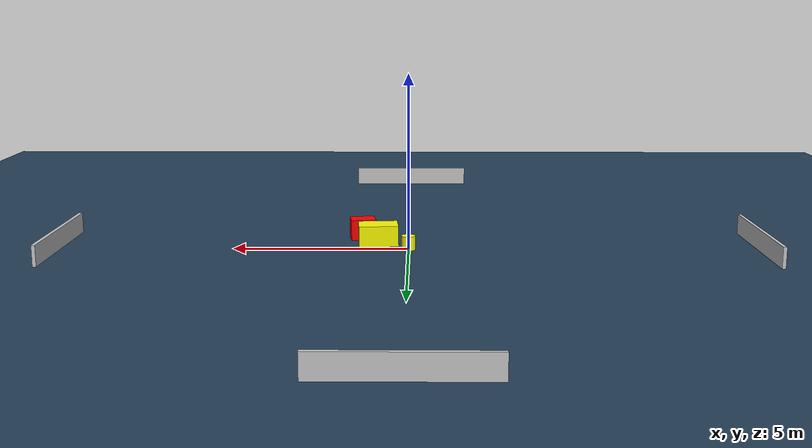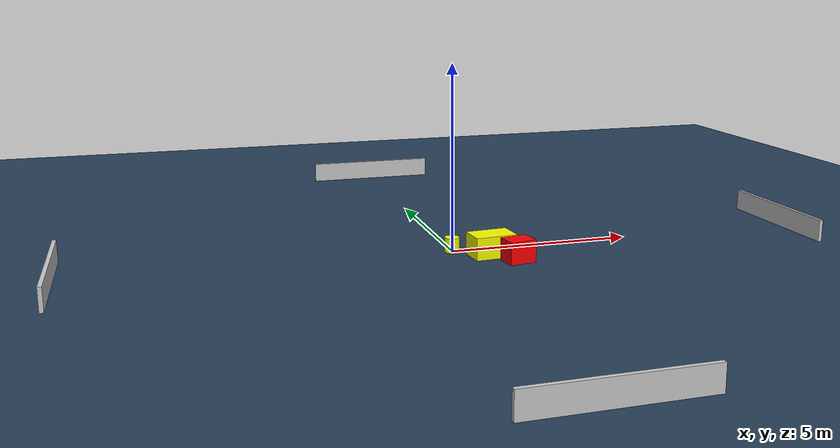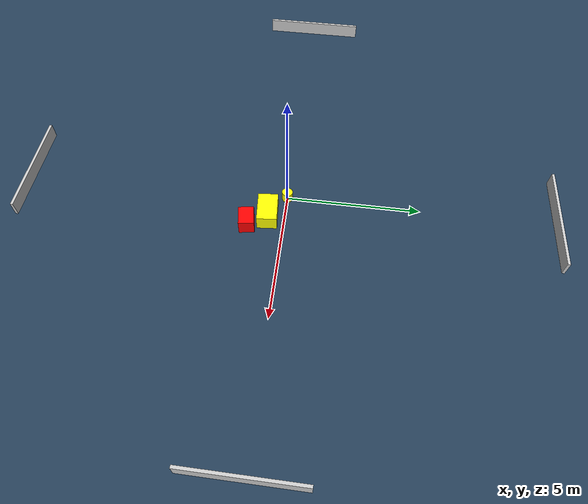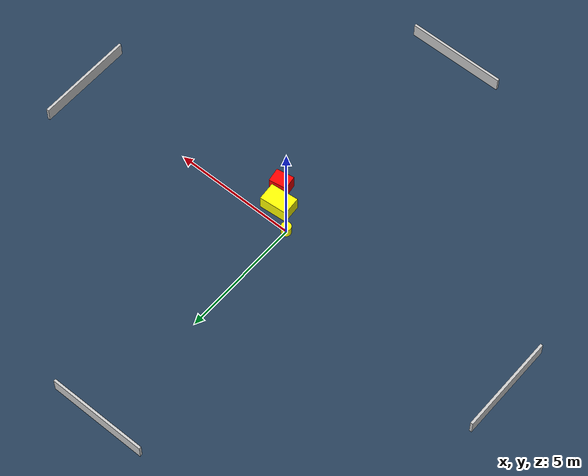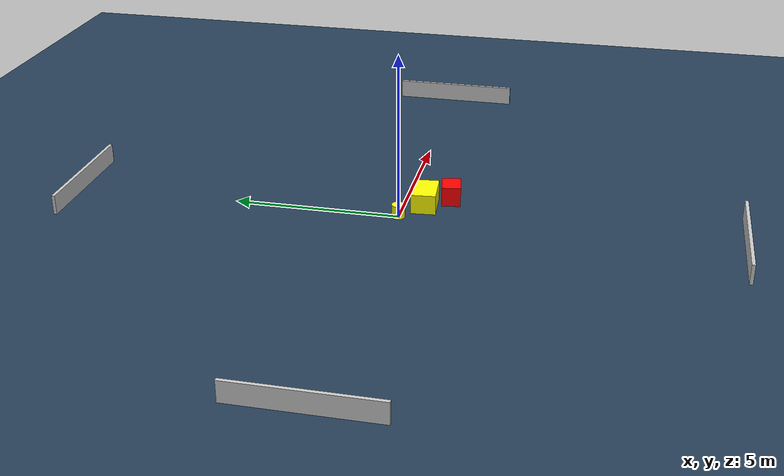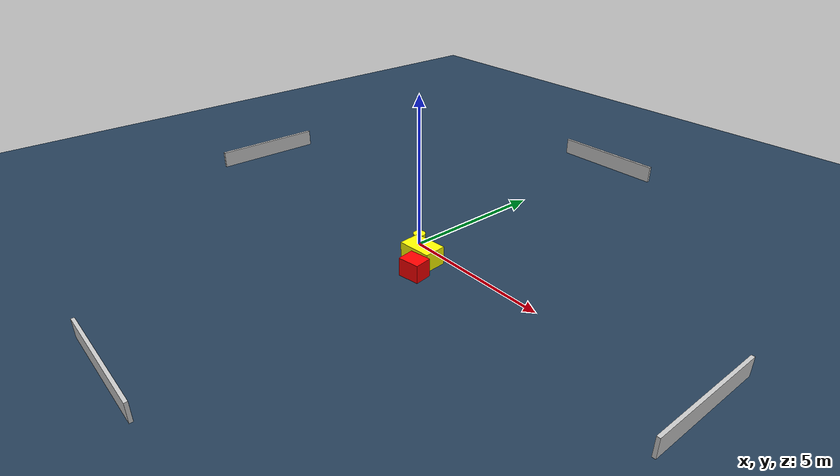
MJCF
<?xml version="1.0" ?>
<mujoco model="generated_environment">
  <option timestep="0.01" integrator="RK4" cone="elliptic"/>
  <default>
    <geom density="1"/>
  </default>
  <asset>
    <texture builtin="gradient" height="3072" name="skybox" rgb1="0.3 0.5 0.7" rgb2="0 0 0" type="skybox" width="512"/>
    <texture builtin="checker" height="300" name="groundplane" rgb1="0.2 0.3 0.4" rgb2="0.1 0.2 0.3" type="2d" width="300"/>
    <material name="groundplane" reflectance="0.2" texrepeat="5 5" texture="groundplane"/>
  </asset>
  <worldbody>
    <light dir="0 0 -1" directional="true" pos="0 0 1.5"/>
    <geom condim="3" friction="0.5 0.005 0.001" material="groundplane" name="floor" pos="0 0 0" size="0 0 0.05" type="plane"/>
    <body name="walls">
      <geom name="wall_1" condim="4" pos="-10.0 0.0 0.3" rgba="0.800000011920929 0.800000011920929 0.800000011920929 1.0" size="0.05 2.0 0.3" type="box"/>
      <geom name="wall_2" condim="4" pos="10.0 0.0 0.3" rgba="0.800000011920929 0.800000011920929 0.800000011920929 1.0" size="0.05 2.0 0.3" type="box"/>
      <geom name="wall_3" condim="4" pos="0.0 -10.0 0.3" rgba="0.800000011920929 0.800000011920929 0.800000011920929 1.0" size="2.0 0.05 0.3" type="box"/>
      <geom name="wall_4" condim="4" pos="0.0 10.0 0.3" rgba="0.800000011920929 0.800000011920929 0.800000011920929 1.0" size="2.0 0.05 0.3" type="box"/>
    </body>
    <body name="robot">
      <joint name="joint_x" type="slide" pos="0 0 0" axis="1 0 0"/>
      <joint name="joint_y" type="slide" pos="0 0 0" axis="0 1 0"/>
      <geom name="robot" type="cylinder" pos="0.0 0.0 0.2" size="0.2 0.2 0.0" mass="5.0" friction="1.0 0.005 0.0001" condim="4" rgba="1.0 1.0 0.0 1.0"/>
    </body>
    <body name="obstacle_1_movable">
      <geom name="obstacle_1_movable" condim="4" pos="0.88696293244511 -0.6290367818172342 0.3" euler="0 0 94.71418919975349" friction="0.0 0.005 0.001" rgba="1.0 1.0 0.0 1.0" size="0.3712759122659389 0.5689268652282687 0.3" type="box" mass="0.1"/>
      <joint type="free"/>
    </body>
    <body name="obstacle_2_static">
      <geom name="obstacle_2_static" condim="4" pos="1.369634494014557 -1.3440242384864356 0.3" euler="0 0 9.012322569316185" friction="0.0 0.005 0.001" rgba="1.0 0.0 0.0 1.0" size="0.3625281059408232 0.28455305834401345 0.3" type="box"/>
    </body>
  </worldbody>
  <actuator>
    <motor name="actuator_x" joint="joint_x" gear="1" ctrlrange="-1 1"/>
    <motor name="actuator_y" joint="joint_y" gear="1" ctrlrange="-1 1"/>
  </actuator>
</mujoco>
